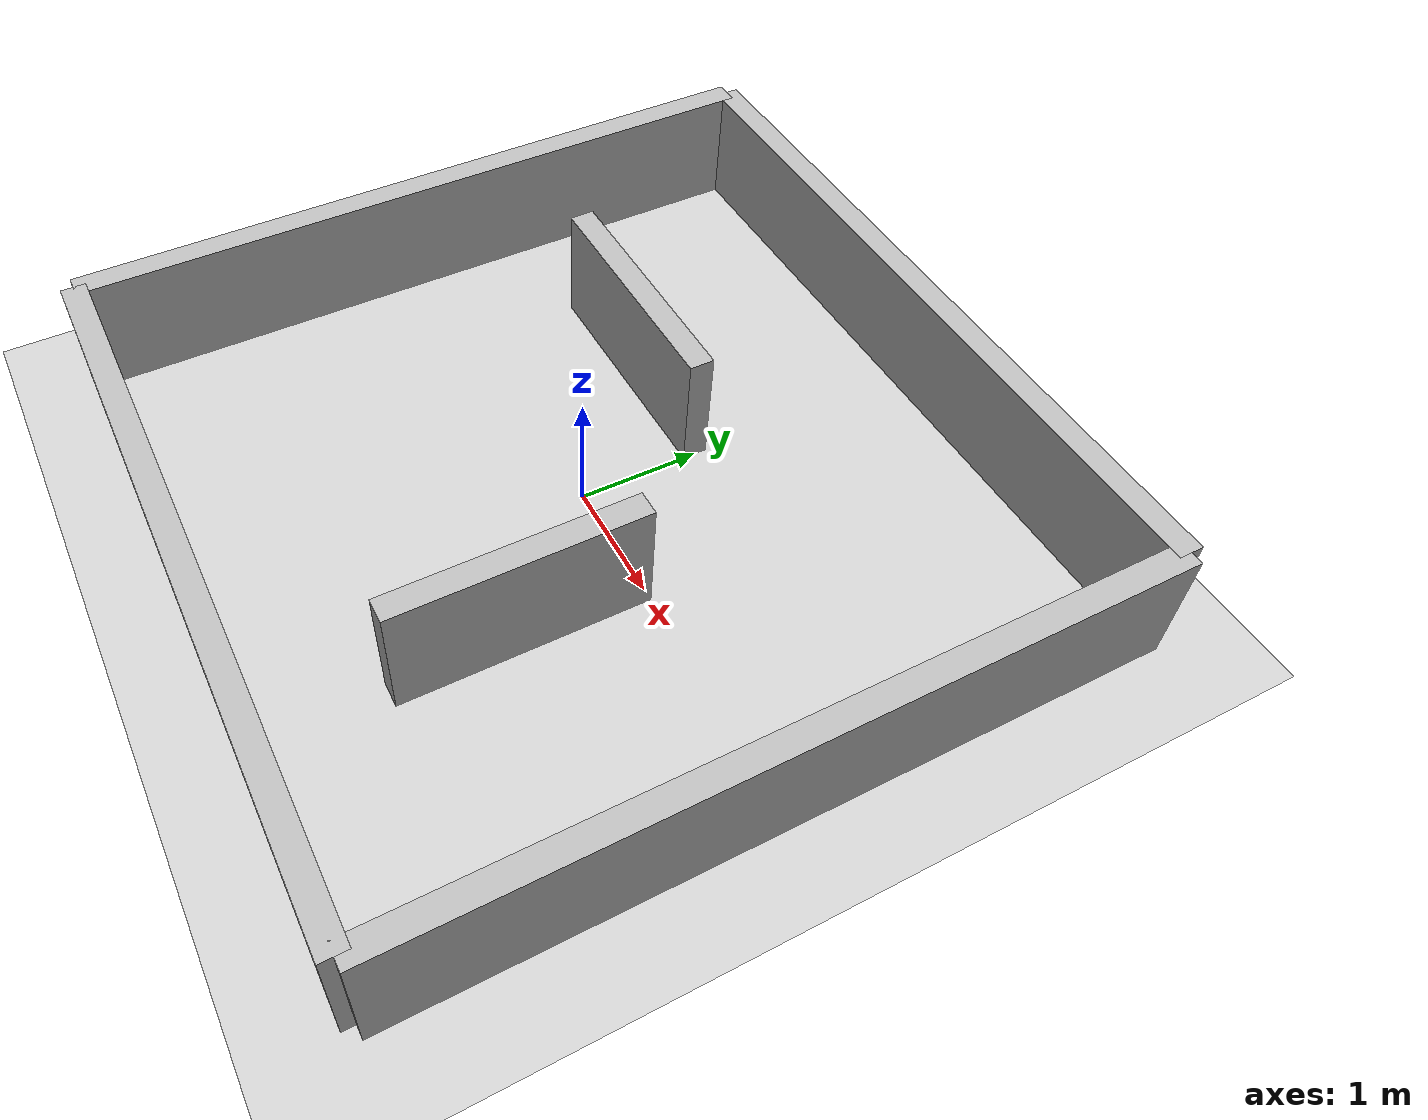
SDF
<?xml version="1.0" ?>
<sdf version="1.8">
  <world name="maze_world">

    <!-- Standard Physics Engine -->
    <plugin
      filename="ignition-gazebo-physics-system"
      name="ignition::gazebo::systems::Physics">
    </plugin>

    <!-- User Commands System Plugin -->
    <plugin
      filename="ignition-gazebo-user-commands-system"
      name="ignition::gazebo::systems::UserCommands">
    </plugin>

    <!-- Scene Broadcaster System Plugin -->
    <plugin
      filename="ignition-gazebo-scene-broadcaster-system"
      name="ignition::gazebo::systems::SceneBroadcaster">
    </plugin>

    <!-- Sensors System Plugin (Required for GPU LiDAR) -->
    <plugin
      filename="ignition-gazebo-sensors-system"
      name="ignition::gazebo::systems::Sensors">
      <render_engine>ogre2</render_engine>
    </plugin>

    <!-- Sun Light Source -->
    <light type="directional" name="sun">
      <cast_shadows>true</cast_shadows>
      <pose>0 0 10 0 0 0</pose>
      <diffuse>0.8 0.8 0.8 1</diffuse>
      <specular>0.2 0.2 0.2 1</specular>
      <direction>-0.5 0.1 -0.9</direction>
    </light>

    <!-- Ground Plane -->
    <model name="ground_plane">
      <static>true</static>
      <link name="link">
        <collision name="collision">
          <geometry>
            <plane>
              <normal>0 0 1</normal>
              <size>100 100</size>
            </plane>
          </geometry>
        </collision>
        <visual name="visual">
          <geometry>
            <plane>
              <normal>0 0 1</normal>
              <size>100 100</size>
            </plane>
          </geometry>
          <material>
            <ambient>0.8 0.8 0.8 1</ambient>
            <diffuse>0.8 0.8 0.8 1</diffuse>
          </material>
        </visual>
      </link>
    </model>

    <!-- MAZE WALLS -->
    <model name="wall_north">
      <static>true</static>
      <pose>0 3 0.5 0 0 0</pose>
      <link name="link">
        <collision name="c"><geometry><box><size>6 0.2 1</size></box></geometry></collision>
        <visual name="v"><geometry><box><size>6 0.2 1</size></box></geometry></visual>
      </link>
    </model>

    <model name="wall_south">
      <static>true</static>
      <pose>0 -3 0.5 0 0 0</pose>
      <link name="link">
        <collision name="c"><geometry><box><size>6 0.2 1</size></box></geometry></collision>
        <visual name="v"><geometry><box><size>6 0.2 1</size></box></geometry></visual>
      </link>
    </model>

    <model name="wall_east">
      <static>true</static>
      <pose>3 0 0.5 0 0 0</pose>
      <link name="link">
        <collision name="c"><geometry><box><size>0.2 6 1</size></box></geometry></collision>
        <visual name="v"><geometry><box><size>0.2 6 1</size></box></geometry></visual>
      </link>
    </model>

    <model name="wall_west">
      <static>true</static>
      <pose>-3 0 0.5 0 0 0</pose>
      <link name="link">
        <collision name="c"><geometry><box><size>0.2 6 1</size></box></geometry></collision>
        <visual name="v"><geometry><box><size>0.2 6 1</size></box></geometry></visual>
      </link>
    </model>

    <model name="wall_inner_1">
      <static>true</static>
      <pose>-1 1 0.5 0 0 0</pose>
      <link name="link">
        <collision name="c"><geometry><box><size>2 0.2 1</size></box></geometry></collision>
        <visual name="v"><geometry><box><size>2 0.2 1</size></box></geometry></visual>
      </link>
    </model>

    <model name="wall_inner_2">
      <static>true</static>
      <pose>1 -1 0.5 0 0 1.5708</pose>
      <link name="link">
        <collision name="c"><geometry><box><size>2 0.2 1</size></box></geometry></collision>
        <visual name="v"><geometry><box><size>2 0.2 1</size></box></geometry></visual>
      </link>
    </model>

  </world>
</sdf>
